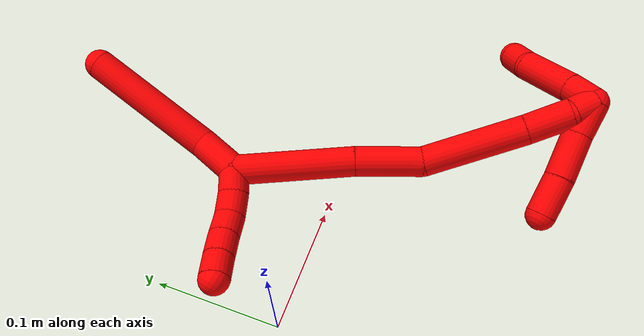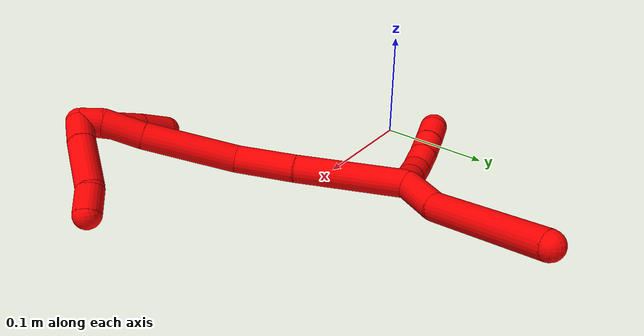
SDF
<sdf version="1.7">
 <world name="default">
  <model name="2">
   <static>0</static>
   <link name="2">
    <collision name="collision-cylinder-e_1_2_8">
     <pose>-0.001761 0.018563 0.003416 -1.38879 -0.09304 0.077496</pose>
     <geometry><cylinder><radius>0.0125</radius><length>0.037914</length></cylinder></geometry>
     <surface>
      <friction><ode><mu>1.16</mu><mu2>1.16</mu2><slip1>0</slip1><slip2>0</slip2></ode></friction>
      <contact><ode><kp>1e+06</kp><kd>1</kd><max_vel>0</max_vel><min_depth>0.001</min_depth></ode></contact>
     </surface>
    </collision>
    <visual name="visual-cylinder-e_1_2_8">
     <pose>-0.001761 0.018563 0.003416 -1.38879 -0.09304 0.077496</pose>
     <geometry><cylinder><radius>0.0125</radius><length>0.037914</length></cylinder></geometry>
     <material><ambient>1 0 0 1</ambient></material>
    </visual>
    <collision name="collision-cylinder-e_2_8_6">
     <pose>-0.024381 0.088881 0.012046 -1.4704 -0.381367 0.345638</pose>
     <geometry><cylinder><radius>0.0125</radius><length>0.112086</length></cylinder></geometry>
     <surface>
      <friction><ode><mu>1.16</mu><mu2>1.16</mu2><slip1>0</slip1><slip2>0</slip2></ode></friction>
      <contact><ode><kp>1e+06</kp><kd>1</kd><max_vel>0</max_vel><min_depth>0.001</min_depth></ode></contact>
     </surface>
    </collision>
    <visual name="visual-cylinder-e_2_8_6">
     <pose>-0.024381 0.088881 0.012046 -1.4704 -0.381367 0.345638</pose>
     <geometry><cylinder><radius>0.0125</radius><length>0.112086</length></cylinder></geometry>
     <material><ambient>1 0 0 1</ambient></material>
    </visual>
    <collision name="collision-cylinder-e_1_2_9">
     <pose>0.001518 -0.005103 -0.008465 2.59914 0.152409 0.535938</pose>
     <geometry><cylinder><radius>0.0125</radius><length>0.02</length></cylinder></geometry>
     <surface>
      <friction><ode><mu>1.16</mu><mu2>1.16</mu2><slip1>0</slip1><slip2>0</slip2></ode></friction>
      <contact><ode><kp>1e+06</kp><kd>1</kd><max_vel>0</max_vel><min_depth>0.001</min_depth></ode></contact>
     </surface>
    </collision>
    <visual name="visual-cylinder-e_1_2_9">
     <pose>0.001518 -0.005103 -0.008465 2.59914 0.152409 0.535938</pose>
     <geometry><cylinder><radius>0.0125</radius><length>0.02</length></cylinder></geometry>
     <material><ambient>1 0 0 1</ambient></material>
    </visual>
    <collision name="collision-cylinder-e_2_9_10">
     <pose>0.002905 -0.014806 -0.025808 2.66342 -0.013121 -0.053818</pose>
     <geometry><cylinder><radius>0.0125</radius><length>0.02</length></cylinder></geometry>
     <surface>
      <friction><ode><mu>1.16</mu><mu2>1.16</mu2><slip1>0</slip1><slip2>0</slip2></ode></friction>
      <contact><ode><kp>1e+06</kp><kd>1</kd><max_vel>0</max_vel><min_depth>0.001</min_depth></ode></contact>
     </surface>
    </collision>
    <visual name="visual-cylinder-e_2_9_10">
     <pose>0.002905 -0.014806 -0.025808 2.66342 -0.013121 -0.053818</pose>
     <geometry><cylinder><radius>0.0125</radius><length>0.02</length></cylinder></geometry>
     <material><ambient>1 0 0 1</ambient></material>
    </visual>
    <collision name="collision-cylinder-e_3_10_11">
     <pose>-0.000383 -0.024004 -0.042986 2.63586 -0.321235 -1.12007</pose>
     <geometry><cylinder><radius>0.0125</radius><length>0.02</length></cylinder></geometry>
     <surface>
      <friction><ode><mu>1.16</mu><mu2>1.16</mu2><slip1>0</slip1><slip2>0</slip2></ode></friction>
      <contact><ode><kp>1e+06</kp><kd>1</kd><max_vel>0</max_vel><min_depth>0.001</min_depth></ode></contact>
     </surface>
    </collision>
    <visual name="visual-cylinder-e_3_10_11">
     <pose>-0.000383 -0.024004 -0.042986 2.63586 -0.321235 -1.12007</pose>
     <geometry><cylinder><radius>0.0125</radius><length>0.02</length></cylinder></geometry>
     <material><ambient>1 0 0 1</ambient></material>
    </visual>
    <collision name="collision-cylinder-e_4_11_12">
     <pose>-0.006863 -0.033678 -0.059236 2.57318 -0.338655 -1.05903</pose>
     <geometry><cylinder><radius>0.0125</radius><length>0.02</length></cylinder></geometry>
     <surface>
      <friction><ode><mu>1.16</mu><mu2>1.16</mu2><slip1>0</slip1><slip2>0</slip2></ode></friction>
      <contact><ode><kp>1e+06</kp><kd>1</kd><max_vel>0</max_vel><min_depth>0.001</min_depth></ode></contact>
     </surface>
    </collision>
    <visual name="visual-cylinder-e_4_11_12">
     <pose>-0.006863 -0.033678 -0.059236 2.57318 -0.338655 -1.05903</pose>
     <geometry><cylinder><radius>0.0125</radius><length>0.02</length></cylinder></geometry>
     <material><ambient>1 0 0 1</ambient></material>
    </visual>
    <collision name="collision-cylinder-e_5_12_5">
     <pose>-0.013247 -0.044059 -0.07509 2.55063 -0.311181 -0.951647</pose>
     <geometry><cylinder><radius>0.0125</radius><length>0.02</length></cylinder></geometry>
     <surface>
      <friction><ode><mu>1.16</mu><mu2>1.16</mu2><slip1>0</slip1><slip2>0</slip2></ode></friction>
      <contact><ode><kp>1e+06</kp><kd>1</kd><max_vel>0</max_vel><min_depth>0.001</min_depth></ode></contact>
     </surface>
    </collision>
    <visual name="visual-cylinder-e_5_12_5">
     <pose>-0.013247 -0.044059 -0.07509 2.55063 -0.311181 -0.951647</pose>
     <geometry><cylinder><radius>0.0125</radius><length>0.02</length></cylinder></geometry>
     <material><ambient>1 0 0 1</ambient></material>
    </visual>
    <collision name="collision-cylinder-e_1_2_13">
     <pose>0.011739 -0.038214 0.029073 0.920414 0.239782 0.119292</pose>
     <geometry><cylinder><radius>0.0125</radius><length>0.09886</length></cylinder></geometry>
     <surface>
      <friction><ode><mu>1.16</mu><mu2>1.16</mu2><slip1>0</slip1><slip2>0</slip2></ode></friction>
      <contact><ode><kp>1e+06</kp><kd>1</kd><max_vel>0</max_vel><min_depth>0.001</min_depth></ode></contact>
     </surface>
    </collision>
    <visual name="visual-cylinder-e_1_2_13">
     <pose>0.011739 -0.038214 0.029073 0.920414 0.239782 0.119292</pose>
     <geometry><cylinder><radius>0.0125</radius><length>0.09886</length></cylinder></geometry>
     <material><ambient>1 0 0 1</ambient></material>
    </visual>
    <collision name="collision-cylinder-e_2_13_14">
     <pose>0.030386 -0.099261 0.072684 1.00385 0.249854 0.137621</pose>
     <geometry><cylinder><radius>0.0125</radius><length>0.055873</length></cylinder></geometry>
     <surface>
      <friction><ode><mu>1.16</mu><mu2>1.16</mu2><slip1>0</slip1><slip2>0</slip2></ode></friction>
      <contact><ode><kp>1e+06</kp><kd>1</kd><max_vel>0</max_vel><min_depth>0.001</min_depth></ode></contact>
     </surface>
    </collision>
    <visual name="visual-cylinder-e_2_13_14">
     <pose>0.030386 -0.099261 0.072684 1.00385 0.249854 0.137621</pose>
     <geometry><cylinder><radius>0.0125</radius><length>0.055873</length></cylinder></geometry>
     <material><ambient>1 0 0 1</ambient></material>
    </visual>
    <collision name="collision-cylinder-e_3_14_15">
     <pose>0.038586 -0.152223 0.118434 0.767728 0.029789 0.012033</pose>
     <geometry><cylinder><radius>0.0125</radius><length>0.0868</length></cylinder></geometry>
     <surface>
      <friction><ode><mu>1.16</mu><mu2>1.16</mu2><slip1>0</slip1><slip2>0</slip2></ode></friction>
      <contact><ode><kp>1e+06</kp><kd>1</kd><max_vel>0</max_vel><min_depth>0.001</min_depth></ode></contact>
     </surface>
    </collision>
    <visual name="visual-cylinder-e_3_14_15">
     <pose>0.038586 -0.152223 0.118434 0.767728 0.029789 0.012033</pose>
     <geometry><cylinder><radius>0.0125</radius><length>0.0868</length></cylinder></geometry>
     <material><ambient>1 0 0 1</ambient></material>
    </visual>
    <collision name="collision-cylinder-e_4_15_16">
     <pose>0.038558 -0.195436 0.163342 0.762584 -0.069608 -0.027916</pose>
     <geometry><cylinder><radius>0.0125</radius><length>0.037975</length></cylinder></geometry>
     <surface>
      <friction><ode><mu>1.16</mu><mu2>1.16</mu2><slip1>0</slip1><slip2>0</slip2></ode></friction>
      <contact><ode><kp>1e+06</kp><kd>1</kd><max_vel>0</max_vel><min_depth>0.001</min_depth></ode></contact>
     </surface>
    </collision>
    <visual name="visual-cylinder-e_4_15_16">
     <pose>0.038558 -0.195436 0.163342 0.762584 -0.069608 -0.027916</pose>
     <geometry><cylinder><radius>0.0125</radius><length>0.037975</length></cylinder></geometry>
     <material><ambient>1 0 0 1</ambient></material>
    </visual>
    <collision name="collision-cylinder-e_5_16_1">
     <pose>0.038903 -0.213737 0.185698 0.542083 0.163264 0.045461</pose>
     <geometry><cylinder><radius>0.0125</radius><length>0.020491</length></cylinder></geometry>
     <surface>
      <friction><ode><mu>1.16</mu><mu2>1.16</mu2><slip1>0</slip1><slip2>0</slip2></ode></friction>
      <contact><ode><kp>1e+06</kp><kd>1</kd><max_vel>0</max_vel><min_depth>0.001</min_depth></ode></contact>
     </surface>
    </collision>
    <visual name="visual-cylinder-e_5_16_1">
     <pose>0.038903 -0.213737 0.185698 0.542083 0.163264 0.045461</pose>
     <geometry><cylinder><radius>0.0125</radius><length>0.020491</length></cylinder></geometry>
     <material><ambient>1 0 0 1</ambient></material>
    </visual>
    <collision name="collision-cylinder-e_1_1_17">
     <pose>0.044012 -0.207527 0.198475 -1.22493 0.276323 -0.194769</pose>
     <geometry><cylinder><radius>0.0125</radius><length>0.025245</length></cylinder></geometry>
     <surface>
      <friction><ode><mu>1.16</mu><mu2>1.16</mu2><slip1>0</slip1><slip2>0</slip2></ode></friction>
      <contact><ode><kp>1e+06</kp><kd>1</kd><max_vel>0</max_vel><min_depth>0.001</min_depth></ode></contact>
     </surface>
    </collision>
    <visual name="visual-cylinder-e_1_1_17">
     <pose>0.044012 -0.207527 0.198475 -1.22493 0.276323 -0.194769</pose>
     <geometry><cylinder><radius>0.0125</radius><length>0.025245</length></cylinder></geometry>
     <material><ambient>1 0 0 1</ambient></material>
    </visual>
    <collision name="collision-cylinder-e_2_17_18">
     <pose>0.054725 -0.172651 0.208993 -1.30432 0.290574 -0.222539</pose>
     <geometry><cylinder><radius>0.0125</radius><length>0.050747</length></cylinder></geometry>
     <surface>
      <friction><ode><mu>1.16</mu><mu2>1.16</mu2><slip1>0</slip1><slip2>0</slip2></ode></friction>
      <contact><ode><kp>1e+06</kp><kd>1</kd><max_vel>0</max_vel><min_depth>0.001</min_depth></ode></contact>
     </surface>
    </collision>
    <visual name="visual-cylinder-e_2_17_18">
     <pose>0.054725 -0.172651 0.208993 -1.30432 0.290574 -0.222539</pose>
     <geometry><cylinder><radius>0.0125</radius><length>0.050747</length></cylinder></geometry>
     <material><ambient>1 0 0 1</ambient></material>
    </visual>
    <collision name="collision-cylinder-e_3_18_4">
     <pose>0.067967 -0.140047 0.220361 -1.07368 0.520731 -0.31449</pose>
     <geometry><cylinder><radius>0.0125</radius><length>0.024008</length></cylinder></geometry>
     <surface>
      <friction><ode><mu>1.16</mu><mu2>1.16</mu2><slip1>0</slip1><slip2>0</slip2></ode></friction>
      <contact><ode><kp>1e+06</kp><kd>1</kd><max_vel>0</max_vel><min_depth>0.001</min_depth></ode></contact>
     </surface>
    </collision>
    <visual name="visual-cylinder-e_3_18_4">
     <pose>0.067967 -0.140047 0.220361 -1.07368 0.520731 -0.31449</pose>
     <geometry><cylinder><radius>0.0125</radius><length>0.024008</length></cylinder></geometry>
     <material><ambient>1 0 0 1</ambient></material>
    </visual>
    <collision name="collision-cylinder-e_1_1_19">
     <pose>0.044353 -0.21872 0.180265 -3.1251 0.262303 -3.01674</pose>
     <geometry><cylinder><radius>0.0125</radius><length>0.029188</length></cylinder></geometry>
     <surface>
      <friction><ode><mu>1.16</mu><mu2>1.16</mu2><slip1>0</slip1><slip2>0</slip2></ode></friction>
      <contact><ode><kp>1e+06</kp><kd>1</kd><max_vel>0</max_vel><min_depth>0.001</min_depth></ode></contact>
     </surface>
    </collision>
    <visual name="visual-cylinder-e_1_1_19">
     <pose>0.044353 -0.21872 0.180265 -3.1251 0.262303 -3.01674</pose>
     <geometry><cylinder><radius>0.0125</radius><length>0.029188</length></cylinder></geometry>
     <material><ambient>1 0 0 1</ambient></material>
    </visual>
    <collision name="collision-cylinder-e_2_19_20">
     <pose>0.052154 -0.219933 0.147648 3.06371 0.212934 2.44244</pose>
     <geometry><cylinder><radius>0.0125</radius><length>0.038018</length></cylinder></geometry>
     <surface>
      <friction><ode><mu>1.16</mu><mu2>1.16</mu2><slip1>0</slip1><slip2>0</slip2></ode></friction>
      <contact><ode><kp>1e+06</kp><kd>1</kd><max_vel>0</max_vel><min_depth>0.001</min_depth></ode></contact>
     </surface>
    </collision>
    <visual name="visual-cylinder-e_2_19_20">
     <pose>0.052154 -0.219933 0.147648 3.06371 0.212934 2.44244</pose>
     <geometry><cylinder><radius>0.0125</radius><length>0.038018</length></cylinder></geometry>
     <material><ambient>1 0 0 1</ambient></material>
    </visual>
    <collision name="collision-cylinder-e_3_20_3">
     <pose>0.060077 -0.221298 0.1132 -3.13653 0.240525 -3.09973</pose>
     <geometry><cylinder><radius>0.0125</radius><length>0.032794</length></cylinder></geometry>
     <surface>
      <friction><ode><mu>1.16</mu><mu2>1.16</mu2><slip1>0</slip1><slip2>0</slip2></ode></friction>
      <contact><ode><kp>1e+06</kp><kd>1</kd><max_vel>0</max_vel><min_depth>0.001</min_depth></ode></contact>
     </surface>
    </collision>
    <visual name="visual-cylinder-e_3_20_3">
     <pose>0.060077 -0.221298 0.1132 -3.13653 0.240525 -3.09973</pose>
     <geometry><cylinder><radius>0.0125</radius><length>0.032794</length></cylinder></geometry>
     <material><ambient>1 0 0 1</ambient></material>
    </visual>
    <collision name="collision-sphere-3">
     <pose>0.063983 -0.221217 0.097276 0 -0 0</pose>
     <geometry><sphere><radius>0.0125</radius></sphere></geometry>
     <surface>
      <friction><ode><mu>1.16</mu><mu2>1.16</mu2><slip1>0</slip1><slip2>0</slip2></ode></friction>
      <contact><ode><kp>1e+06</kp><kd>1</kd><max_vel>0</max_vel><min_depth>0.001</min_depth></ode></contact>
     </surface>
    </collision>
    <visual name="visual-sphere-3">
     <pose>0.063983 -0.221217 0.097276 0 -0 0</pose>
     <geometry><sphere><radius>0.0125</radius></sphere></geometry>
     <material><ambient>1 0 0 1</ambient></material>
    </visual>
    <collision name="collision-sphere-20">
     <pose>0.056171 -0.221378 0.129125 0 -0 0</pose>
     <geometry><sphere><radius>0.0125</radius></sphere></geometry>
     <surface>
      <friction><ode><mu>1.16</mu><mu2>1.16</mu2><slip1>0</slip1><slip2>0</slip2></ode></friction>
      <contact><ode><kp>1e+06</kp><kd>1</kd><max_vel>0</max_vel><min_depth>0.001</min_depth></ode></contact>
     </surface>
    </collision>
    <visual name="visual-sphere-20">
     <pose>0.056171 -0.221378 0.129125 0 -0 0</pose>
     <geometry><sphere><radius>0.0125</radius></sphere></geometry>
     <material><ambient>1 0 0 1</ambient></material>
    </visual>
    <collision name="collision-sphere-19">
     <pose>0.048137 -0.218487 0.166172 0 -0 0</pose>
     <geometry><sphere><radius>0.0125</radius></sphere></geometry>
     <surface>
      <friction><ode><mu>1.16</mu><mu2>1.16</mu2><slip1>0</slip1><slip2>0</slip2></ode></friction>
      <contact><ode><kp>1e+06</kp><kd>1</kd><max_vel>0</max_vel><min_depth>0.001</min_depth></ode></contact>
     </surface>
    </collision>
    <visual name="visual-sphere-19">
     <pose>0.048137 -0.218487 0.166172 0 -0 0</pose>
     <geometry><sphere><radius>0.0125</radius></sphere></geometry>
     <material><ambient>1 0 0 1</ambient></material>
    </visual>
    <collision name="collision-sphere-11">
     <pose>-0.003541 -0.028601 -0.051287 0 -0 0</pose>
     <geometry><sphere><radius>0.0125</radius></sphere></geometry>
     <surface>
      <friction><ode><mu>1.16</mu><mu2>1.16</mu2><slip1>0</slip1><slip2>0</slip2></ode></friction>
      <contact><ode><kp>1e+06</kp><kd>1</kd><max_vel>0</max_vel><min_depth>0.001</min_depth></ode></contact>
     </surface>
    </collision>
    <visual name="visual-sphere-11">
     <pose>-0.003541 -0.028601 -0.051287 0 -0 0</pose>
     <geometry><sphere><radius>0.0125</radius></sphere></geometry>
     <material><ambient>1 0 0 1</ambient></material>
    </visual>
    <collision name="collision-sphere-10">
     <pose>0.002774 -0.019407 -0.034686 0 -0 0</pose>
     <geometry><sphere><radius>0.0125</radius></sphere></geometry>
     <surface>
      <friction><ode><mu>1.16</mu><mu2>1.16</mu2><slip1>0</slip1><slip2>0</slip2></ode></friction>
      <contact><ode><kp>1e+06</kp><kd>1</kd><max_vel>0</max_vel><min_depth>0.001</min_depth></ode></contact>
     </surface>
    </collision>
    <visual name="visual-sphere-10">
     <pose>0.002774 -0.019407 -0.034686 0 -0 0</pose>
     <geometry><sphere><radius>0.0125</radius></sphere></geometry>
     <material><ambient>1 0 0 1</ambient></material>
    </visual>
    <collision name="collision-sphere-6">
     <pose>-0.04524 0.140636 0.01726 0 -0 0</pose>
     <geometry><sphere><radius>0.0125</radius></sphere></geometry>
     <surface>
      <friction><ode><mu>1.16</mu><mu2>1.16</mu2><slip1>0</slip1><slip2>0</slip2></ode></friction>
      <contact><ode><kp>1e+06</kp><kd>1</kd><max_vel>0</max_vel><min_depth>0.001</min_depth></ode></contact>
     </surface>
    </collision>
    <visual name="visual-sphere-6">
     <pose>-0.04524 0.140636 0.01726 0 -0 0</pose>
     <geometry><sphere><radius>0.0125</radius></sphere></geometry>
     <material><ambient>1 0 0 1</ambient></material>
    </visual>
    <collision name="collision-sphere-9">
     <pose>0.003036 -0.010205 -0.01693 0 -0 0</pose>
     <geometry><sphere><radius>0.0125</radius></sphere></geometry>
     <surface>
      <friction><ode><mu>1.16</mu><mu2>1.16</mu2><slip1>0</slip1><slip2>0</slip2></ode></friction>
      <contact><ode><kp>1e+06</kp><kd>1</kd><max_vel>0</max_vel><min_depth>0.001</min_depth></ode></contact>
     </surface>
    </collision>
    <visual name="visual-sphere-9">
     <pose>0.003036 -0.010205 -0.01693 0 -0 0</pose>
     <geometry><sphere><radius>0.0125</radius></sphere></geometry>
     <material><ambient>1 0 0 1</ambient></material>
    </visual>
    <collision name="collision-sphere-2">
     <geometry><sphere><radius>0.0125</radius></sphere></geometry>
     <surface>
      <friction><ode><mu>1.16</mu><mu2>1.16</mu2><slip1>0</slip1><slip2>0</slip2></ode></friction>
      <contact><ode><kp>1e+06</kp><kd>1</kd><max_vel>0</max_vel><min_depth>0.001</min_depth></ode></contact>
     </surface>
    </collision>
    <visual name="visual-sphere-2">
     <geometry><sphere><radius>0.0125</radius></sphere></geometry>
     <material><ambient>1 0 0 1</ambient></material>
    </visual>
    <collision name="collision-sphere-8">
     <pose>-0.003522 0.037126 0.006833 0 -0 0</pose>
     <geometry><sphere><radius>0.0125</radius></sphere></geometry>
     <surface>
      <friction><ode><mu>1.16</mu><mu2>1.16</mu2><slip1>0</slip1><slip2>0</slip2></ode></friction>
      <contact><ode><kp>1e+06</kp><kd>1</kd><max_vel>0</max_vel><min_depth>0.001</min_depth></ode></contact>
     </surface>
    </collision>
    <visual name="visual-sphere-8">
     <pose>-0.003522 0.037126 0.006833 0 -0 0</pose>
     <geometry><sphere><radius>0.0125</radius></sphere></geometry>
     <material><ambient>1 0 0 1</ambient></material>
    </visual>
    <collision name="collision-sphere-12">
     <pose>-0.010185 -0.038755 -0.067185 0 -0 0</pose>
     <geometry><sphere><radius>0.0125</radius></sphere></geometry>
     <surface>
      <friction><ode><mu>1.16</mu><mu2>1.16</mu2><slip1>0</slip1><slip2>0</slip2></ode></friction>
      <contact><ode><kp>1e+06</kp><kd>1</kd><max_vel>0</max_vel><min_depth>0.001</min_depth></ode></contact>
     </surface>
    </collision>
    <visual name="visual-sphere-12">
     <pose>-0.010185 -0.038755 -0.067185 0 -0 0</pose>
     <geometry><sphere><radius>0.0125</radius></sphere></geometry>
     <material><ambient>1 0 0 1</ambient></material>
    </visual>
    <collision name="collision-sphere-5">
     <pose>-0.016309 -0.049363 -0.082995 0 -0 0</pose>
     <geometry><sphere><radius>0.0125</radius></sphere></geometry>
     <surface>
      <friction><ode><mu>1.16</mu><mu2>1.16</mu2><slip1>0</slip1><slip2>0</slip2></ode></friction>
      <contact><ode><kp>1e+06</kp><kd>1</kd><max_vel>0</max_vel><min_depth>0.001</min_depth></ode></contact>
     </surface>
    </collision>
    <visual name="visual-sphere-5">
     <pose>-0.016309 -0.049363 -0.082995 0 -0 0</pose>
     <geometry><sphere><radius>0.0125</radius></sphere></geometry>
     <material><ambient>1 0 0 1</ambient></material>
    </visual>
    <collision name="collision-sphere-13">
     <pose>0.023478 -0.076427 0.058146 0 -0 0</pose>
     <geometry><sphere><radius>0.0125</radius></sphere></geometry>
     <surface>
      <friction><ode><mu>1.16</mu><mu2>1.16</mu2><slip1>0</slip1><slip2>0</slip2></ode></friction>
      <contact><ode><kp>1e+06</kp><kd>1</kd><max_vel>0</max_vel><min_depth>0.001</min_depth></ode></contact>
     </surface>
    </collision>
    <visual name="visual-sphere-13">
     <pose>0.023478 -0.076427 0.058146 0 -0 0</pose>
     <geometry><sphere><radius>0.0125</radius></sphere></geometry>
     <material><ambient>1 0 0 1</ambient></material>
    </visual>
    <collision name="collision-sphere-14">
     <pose>0.037294 -0.122095 0.087222 0 -0 0</pose>
     <geometry><sphere><radius>0.0125</radius></sphere></geometry>
     <surface>
      <friction><ode><mu>1.16</mu><mu2>1.16</mu2><slip1>0</slip1><slip2>0</slip2></ode></friction>
      <contact><ode><kp>1e+06</kp><kd>1</kd><max_vel>0</max_vel><min_depth>0.001</min_depth></ode></contact>
     </surface>
    </collision>
    <visual name="visual-sphere-14">
     <pose>0.037294 -0.122095 0.087222 0 -0 0</pose>
     <geometry><sphere><radius>0.0125</radius></sphere></geometry>
     <material><ambient>1 0 0 1</ambient></material>
    </visual>
    <collision name="collision-sphere-15">
     <pose>0.039879 -0.182352 0.149646 0 -0 0</pose>
     <geometry><sphere><radius>0.0125</radius></sphere></geometry>
     <surface>
      <friction><ode><mu>1.16</mu><mu2>1.16</mu2><slip1>0</slip1><slip2>0</slip2></ode></friction>
      <contact><ode><kp>1e+06</kp><kd>1</kd><max_vel>0</max_vel><min_depth>0.001</min_depth></ode></contact>
     </surface>
    </collision>
    <visual name="visual-sphere-15">
     <pose>0.039879 -0.182352 0.149646 0 -0 0</pose>
     <geometry><sphere><radius>0.0125</radius></sphere></geometry>
     <material><ambient>1 0 0 1</ambient></material>
    </visual>
    <collision name="collision-sphere-16">
     <pose>0.037238 -0.208521 0.177038 0 -0 0</pose>
     <geometry><sphere><radius>0.0125</radius></sphere></geometry>
     <surface>
      <friction><ode><mu>1.16</mu><mu2>1.16</mu2><slip1>0</slip1><slip2>0</slip2></ode></friction>
      <contact><ode><kp>1e+06</kp><kd>1</kd><max_vel>0</max_vel><min_depth>0.001</min_depth></ode></contact>
     </surface>
    </collision>
    <visual name="visual-sphere-16">
     <pose>0.037238 -0.208521 0.177038 0 -0 0</pose>
     <geometry><sphere><radius>0.0125</radius></sphere></geometry>
     <material><ambient>1 0 0 1</ambient></material>
    </visual>
    <collision name="collision-sphere-1">
     <pose>0.040568 -0.218952 0.194358 0 -0 0</pose>
     <geometry><sphere><radius>0.0125</radius></sphere></geometry>
     <surface>
      <friction><ode><mu>1.16</mu><mu2>1.16</mu2><slip1>0</slip1><slip2>0</slip2></ode></friction>
      <contact><ode><kp>1e+06</kp><kd>1</kd><max_vel>0</max_vel><min_depth>0.001</min_depth></ode></contact>
     </surface>
    </collision>
    <visual name="visual-sphere-1">
     <pose>0.040568 -0.218952 0.194358 0 -0 0</pose>
     <geometry><sphere><radius>0.0125</radius></sphere></geometry>
     <material><ambient>1 0 0 1</ambient></material>
    </visual>
    <collision name="collision-sphere-18">
     <pose>0.061995 -0.1492 0.215395 0 -0 0</pose>
     <geometry><sphere><radius>0.0125</radius></sphere></geometry>
     <surface>
      <friction><ode><mu>1.16</mu><mu2>1.16</mu2><slip1>0</slip1><slip2>0</slip2></ode></friction>
      <contact><ode><kp>1e+06</kp><kd>1</kd><max_vel>0</max_vel><min_depth>0.001</min_depth></ode></contact>
     </surface>
    </collision>
    <visual name="visual-sphere-18">
     <pose>0.061995 -0.1492 0.215395 0 -0 0</pose>
     <geometry><sphere><radius>0.0125</radius></sphere></geometry>
     <material><ambient>1 0 0 1</ambient></material>
    </visual>
    <collision name="collision-sphere-17">
     <pose>0.047456 -0.196103 0.202592 0 -0 0</pose>
     <geometry><sphere><radius>0.0125</radius></sphere></geometry>
     <surface>
      <friction><ode><mu>1.16</mu><mu2>1.16</mu2><slip1>0</slip1><slip2>0</slip2></ode></friction>
      <contact><ode><kp>1e+06</kp><kd>1</kd><max_vel>0</max_vel><min_depth>0.001</min_depth></ode></contact>
     </surface>
    </collision>
    <visual name="visual-sphere-17">
     <pose>0.047456 -0.196103 0.202592 0 -0 0</pose>
     <geometry><sphere><radius>0.0125</radius></sphere></geometry>
     <material><ambient>1 0 0 1</ambient></material>
    </visual>
    <collision name="collision-sphere-4">
     <pose>0.073939 -0.130894 0.225327 0 -0 0</pose>
     <geometry><sphere><radius>0.0125</radius></sphere></geometry>
     <surface>
      <friction><ode><mu>1.16</mu><mu2>1.16</mu2><slip1>0</slip1><slip2>0</slip2></ode></friction>
      <contact><ode><kp>1e+06</kp><kd>1</kd><max_vel>0</max_vel><min_depth>0.001</min_depth></ode></contact>
     </surface>
    </collision>
    <visual name="visual-sphere-4">
     <pose>0.073939 -0.130894 0.225327 0 -0 0</pose>
     <geometry><sphere><radius>0.0125</radius></sphere></geometry>
     <material><ambient>1 0 0 1</ambient></material>
    </visual>
    <inertial>
     <pose>0.021487 -0.087294 0.079954 0 -0 0</pose>
     <mass>0.75</mass>
     <inertia>
      <ixx>0.000335</ixx>
      <ixy>0</ixy>
      <ixz>0</ixz>
      <iyy>0.000197</iyy>
      <iyz>0</iyz>
      <izz>1.2e-05</izz>
     </inertia>
    </inertial>
   </link>
   <pose>0.104549 0.080884 0.017569 -0.721262 1.30921 -0.94784</pose>
  </model>
 </world>
</sdf>
